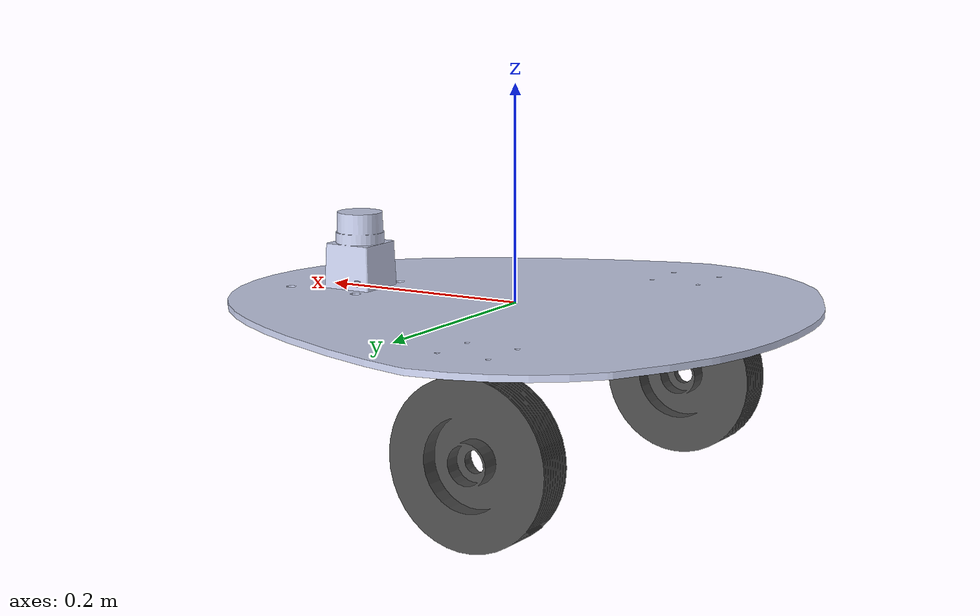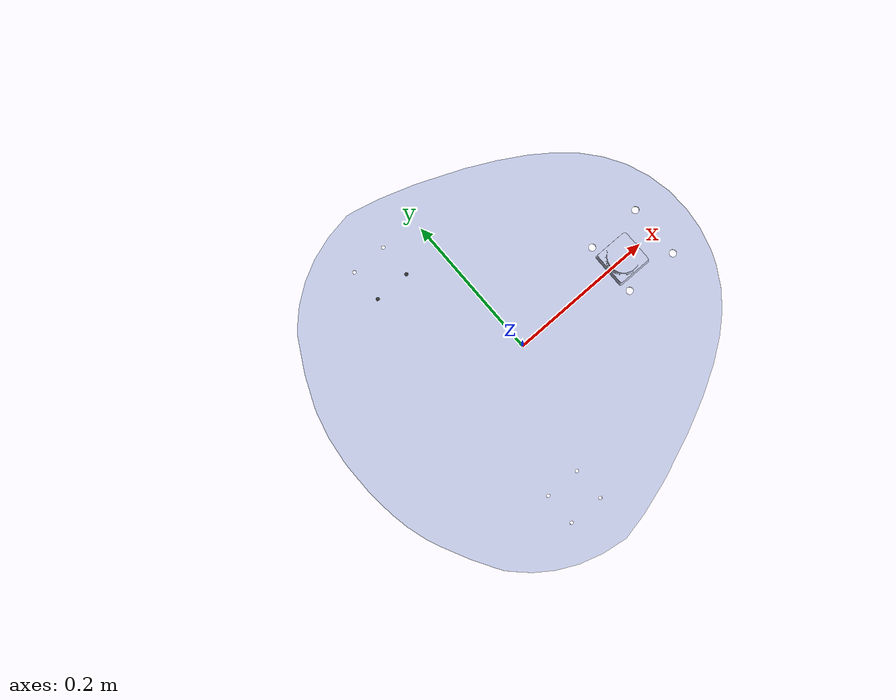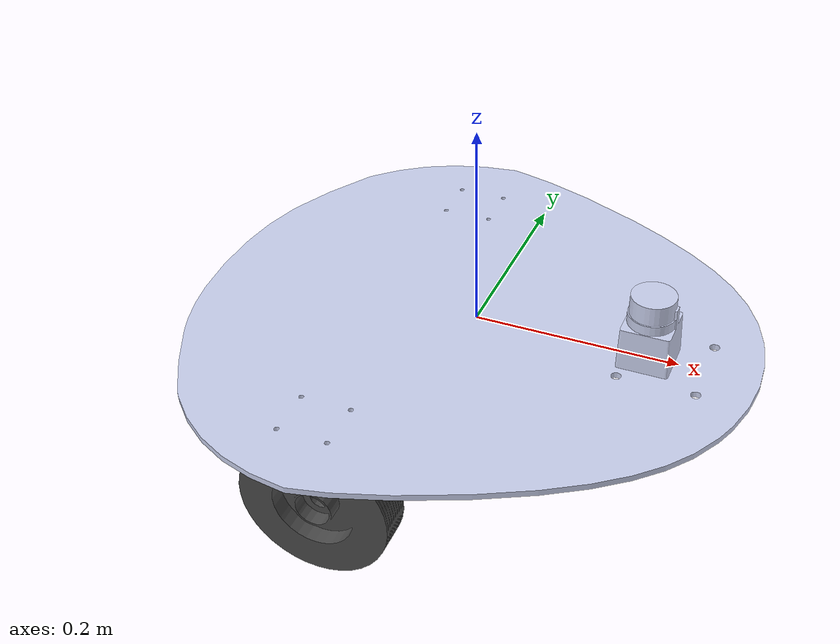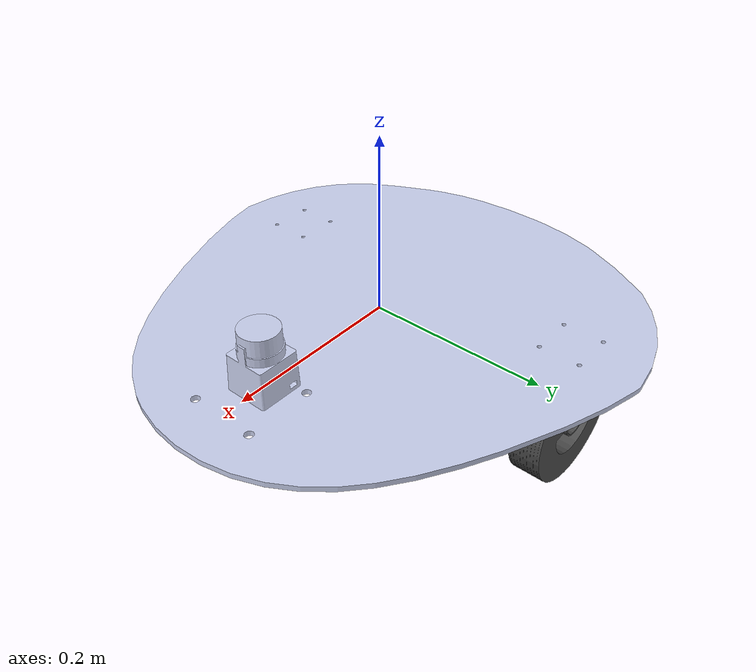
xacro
<?xml version="1.0"?>

<robot
  name="robot">
  <link
    name="base_link">
    <inertial>
      <origin
        xyz="0.0710712962197142 -0.000137753873757876 -0.0472356807568853"
        rpy="0 0 0" />
      <mass
        value="2.8968201286225" />
      <inertia
        ixx="0.0435515415861913"
        ixy="-7.54353183930224E-05"
        ixz="-0.0120679749993695"
        iyy="0.0775488218939522"
        iyz="3.02473586563858E-05"
        izz="0.105083705856808" />
    </inertial>
    <visual>
      <origin
        xyz="0 0 0"
        rpy="0 0 0" />
      <geometry>
        <mesh
          filename="package://hdf_model/meshes/base_link.STL" />
      </geometry>
      <material
        name="">
        <color
          rgba="0.792156862745098 0.819607843137255 0.933333333333333 1" />
      </material>
    </visual>
    <collision>
      <origin
        xyz="0 0 0"
        rpy="0 0 0" />
      <geometry>
        <mesh
          filename="package://hdf_model/meshes/base_link.STL" />
      </geometry>
    </collision>
  </link>
  <link
    name="front_left_wheel_link">
    <inertial>
      <origin
        xyz="0 -6.3295189589585E-07 0"
        rpy="0 0 0" />
      <mass
        value="0.482131555796721" />
      <inertia
        ixx="0.000893944886202995"
        ixy="-4.51240238343766E-20"
        ixz="1.17525821431534E-20"
        iyy="0.00168163508591572"
        iyz="-3.96864618172625E-21"
        izz="0.000893944886202995" />
    </inertial>
    <visual>
      <origin
        xyz="0 0 0"
        rpy="0 0 0" />
      <geometry>
        <mesh
          filename="package://hdf_model/meshes/front_left_wheel_link.STL" />
      </geometry>
      <material
        name="">
        <color
          rgba="0.294117647058824 0.294117647058824 0.294117647058824 1" />
      </material>
    </visual>
    <collision>
      <origin
        xyz="0 0 0"
        rpy="0 0 0" />
      <geometry>
        <cylinder length="0.037" radius="0.075" />
      </geometry>
    </collision>
  </link>
  <joint
    name="front_left_wheel_joint"
    type="continuous">
    <origin
      xyz="-0.0774999999999994 0.1925 -0.0930000000000001"
      rpy="1.29699056065384E-16 0.000304917468774119 3.60306029014719E-15" />
    <parent
      link="base_link" />
    <child
      link="front_left_wheel_link" />
    <axis
      xyz="0 -1 0" />
  </joint>
  <transmission name="front_left_wheel_trans" type="SimpleTransmission">
      <type>transmission_interface/SimpleTransmission</type>
      <actuator name="front_left_wheel_motor">
         <mechanicalReduction>1</mechanicalReduction>
	</actuator>
      <joint name="front_left_wheel_joint">
	  <hardwareInterface>VelocityJointInterface</hardwareInterface>
	</joint>
   </transmission>

  <link
    name="front_right_wheel_link">
    <inertial>
      <origin
        xyz="0 -6.3295189589585E-07 0"
        rpy="0 0 0" />
      <mass
        value="0.482131555796721" />
      <inertia
        ixx="0.000893944886202993"
        ixy="-2.15673142206335E-20"
        ixz="-1.62630325872826E-19"
        iyy="0.00168163508591572"
        iyz="1.16692499357991E-20"
        izz="0.000893944886202994" />
    </inertial>
    <visual>
      <origin
        xyz="0 0 0"
        rpy="0 0 0" />
      <geometry>
        <mesh
          filename="package://hdf_model/meshes/front_right_wheel_link.STL" />
      </geometry>
      <material
        name="">
        <color
          rgba="0.294117647058824 0.294117647058824 0.294117647058824 1" />
      </material>
    </visual>
    <collision>
      <origin
        xyz="0 0 0"
        rpy="0 0 0" />
      <geometry>
        <cylinder length="0.037" radius="0.075" />
      </geometry>
    </collision>
  </link>
  <joint
    name="front_right_wheel_joint"
    type="continuous">
    <origin
      xyz="-0.0774999999999989 -0.192500000000001 -0.0930000000000001"
      rpy="1.54507720819671E-16 -0.580624336864947 3.51749903859331E-15" />
    <parent
      link="base_link" />
    <child
      link="front_right_wheel_link" />
    <axis
      xyz="0 -1 0" />
  </joint>

<transmission name="front_right_wheel_trans" type="SimpleTransmission">
      <type>transmission_interface/SimpleTransmission</type>
      <actuator name="front_right_wheel_motor">
         <mechanicalReduction>1</mechanicalReduction>
	</actuator>
      <joint name="front_right_wheel_joint">
	  <hardwareInterface>VelocityJointInterface</hardwareInterface>
	</joint>
   </transmission>

  <link
    name="laser_link">
    <inertial>
      <origin
        xyz="-8.54230302427539E-05 6.72214995819098E-05 0.0299775216686896"
        rpy="0 0 0" />
      <mass
        value="0.149621221992963" />
      <inertia
        ixx="8.91590299505418E-05"
        ixy="8.67289898114126E-08"
        ixz="4.3986338046771E-08"
        iyy="8.93716564388956E-05"
        iyz="-2.34056549904993E-07"
        izz="5.2029602781235E-05" />
    </inertial>
    <visual>
      <origin
        xyz="0 0 0"
        rpy="0 0 0" />
      <geometry>
        <mesh
          filename="package://hdf_model/meshes/laser_link.STL" />
      </geometry>
      <material
        name="">
        <color
          rgba="0.792156862745098 0.819607843137255 0.933333333333333 1" />
      </material>
    </visual>
    <collision>
      <origin
        xyz="0 0 0"
        rpy="0 0 0" />
      <geometry>
        <mesh
          filename="package://hdf_model/meshes/laser_link.STL" />
      </geometry>
    </collision>
  </link>
  <joint
    name="laser_joint"
    type="fixed">
    <origin
      xyz="0.170650000000521 0 0"
      rpy="0 0 3.14" />
    <parent
      link="base_link" />
    <child
      link="laser_link" />
    <axis
      xyz="0 0 0" />
  </joint>
</robot>
